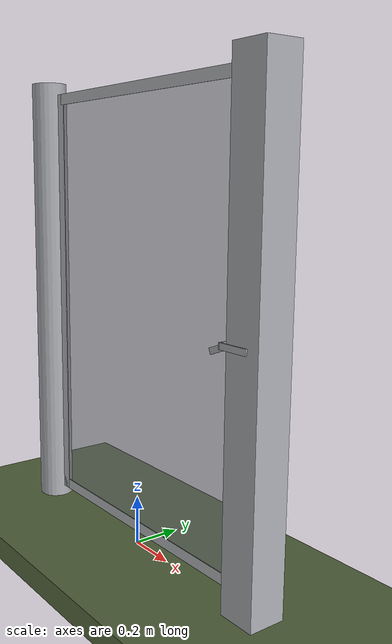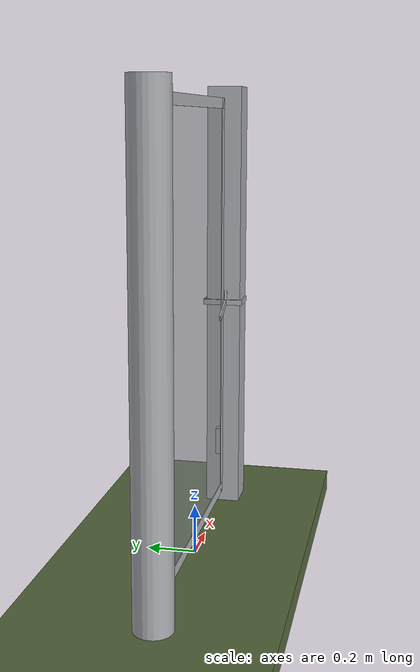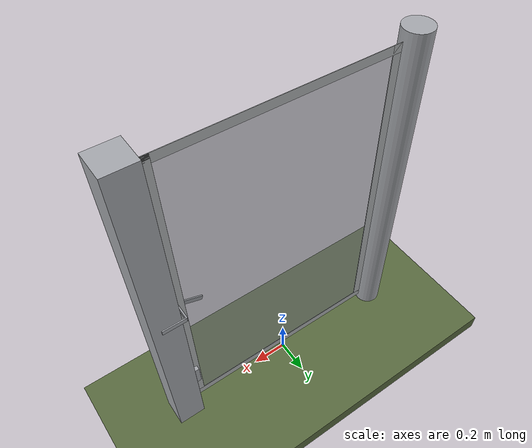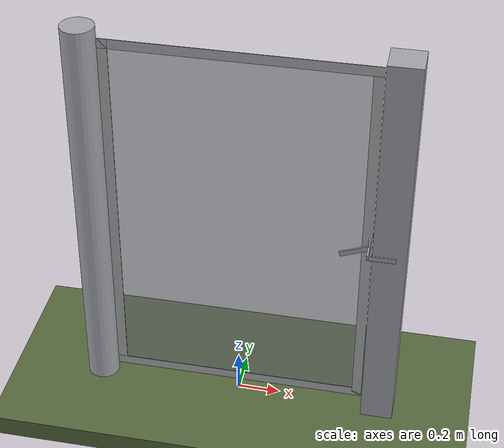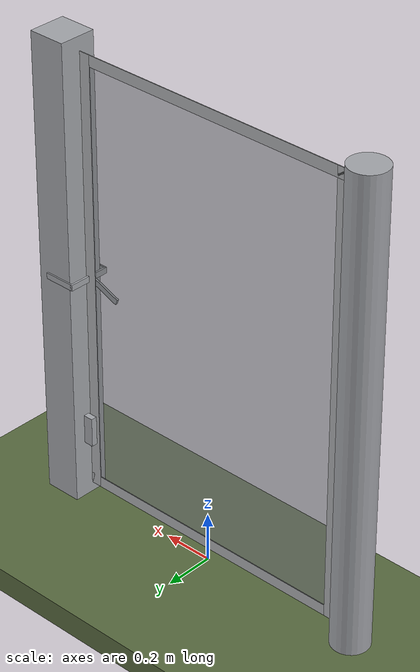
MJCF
<?xml version="1.0" ?>
<mujoco model="db0200_gate_swing_minimal">
  <compiler angle="radian" meshdir="../../hardware" texturedir="../../textures" autolimits="true" inertiafromgeom="false"/>
  <option timestep="0.002" integrator="implicitfast" cone="elliptic" impratio="10" noslip_iterations="3">
    <flag multiccd="enable"/>
  </option>
  <size memory="16M"/>
  <default>
    <geom condim="4" solref="0.005 1" solimp="0.95 0.99 0.001"/>
    <joint solreflimit="0.005 1" solimplimit="0.95 0.99 0.001"/>
    <tendon solreflimit="0.005 1"/>
    <equality solref="0.002 1"/>
  </default>
  <visual>
    <headlight ambient="0.4 0.4 0.4" diffuse="0.7 0.7 0.7" specular="0.2 0.2 0.2"/>
    <quality shadowsize="4096"/>
    <map znear="0.01" zfar="60"/>
  </visual>
  <asset>
    <material name="mat_floor" rgba="0.35 0.42 0.25 1" specular="0.2" shininess="0.15" reflectance="0"/>
    <material name="mat_wall" rgba="0.78 0.76 0.7 1" specular="0.2" shininess="0.1" reflectance="0"/>
    <material name="mat_leaf" rgba="0.7 0.71 0.72 1" specular="0.74" shininess="0.5" reflectance="0.36"/>
    <material name="mat_mesh_infill" rgba="0.6 0.62 0.64 0.55" specular="0.68" shininess="0.3" reflectance="0.1"/>
    <material name="mat_hinge" rgba="0.65 0.66 0.68 1" specular="0.74" shininess="0.5" reflectance="0.36"/>
    <material name="mat_op_steel_galvanized" rgba="0.65 0.66 0.68 1" specular="0.74" shininess="0.5" reflectance="0.36"/>
    <material name="mat_frame" rgba="0.65 0.66 0.68 1" specular="0.74" shininess="0.5" reflectance="0.36"/>
    <material name="mat_fence_mesh" rgba="0.6 0.62 0.64 0.5" specular="0.68" shininess="0.3" reflectance="0.1"/>
    <texture name="skybox" type="skybox" builtin="gradient" rgb1="0.6 0.7 0.85" rgb2="0.9 0.92 0.95" width="256" height="256"/>
  </asset>
  <worldbody>
    <light name="sun" pos="1.5 -2.5 4" dir="-0.3 0.5 -0.8" directional="true" diffuse="0.8 0.8 0.8" specular="0.3 0.3 0.3" castshadow="true"/>
    <light name="fill" pos="-1.5 2.5 3" dir="0.3 -0.5 -0.7" directional="true" diffuse="0.35 0.35 0.4" castshadow="false"/>
    <camera name="robot_view" pos="0 -2.33125 1.56275" xyaxes="1 0 0 0 0.26963 0.962964" fovy="52"/>
    <camera name="far_view" pos="0 2.33125 1.56275" xyaxes="-1 0 0 0 -0.26963 0.962964" fovy="52"/>
    <camera name="iso" pos="1.77175 -1.95825 1.93575" xyaxes="0.741536 0.670913 0 -0.242917 0.268487 0.932151" fovy="46"/>
    <camera name="detail_handle" pos="0.766 -0.8135 1.285" xyaxes="0.97561 0.219512 0 -0.070934 0.315262 0.94635" fovy="38"/>
    <geom name="floor" type="box" size="6 6 0.05" pos="0 0 -0.05" material="mat_floor" group="0" contype="1" conaffinity="1" friction="0.8 0.005 0.0001" density="2400"/>
    <geom name="post_hinge" type="cylinder" size="0.075 0.95" pos="-0.681 0 0.95" material="mat_frame" group="0" contype="1" conaffinity="1" friction="0.6 0.005 0.0001" density="800"/>
    <geom name="post_latch" type="box" size="0.075 0.075 0.95" pos="0.681 0 0.95" material="mat_frame" group="0" contype="1" conaffinity="1" friction="0.6 0.005 0.0001" density="800"/>
    <geom name="gate_stop" type="box" size="0.02 0.012 0.06" pos="0.586 0.0135 0.3" material="mat_frame" group="0" contype="1" conaffinity="1" friction="0.6 0.005 0.0001" density="800"/>
    <site name="approach_point" pos="0 -1.5 0" quat="1 0 0 0" size="0.05" rgba="0.2 0.9 0.2 0.5" group="4"/>
    <site name="goal_point" pos="0 1.5 0" quat="1 0 0 0" size="0.05" rgba="0.2 0.9 0.2 0.5" group="4"/>
    <site name="door_plane_center" pos="0 0 0.91" quat="1 0 0 0" size="0.02" rgba="0.2 0.9 0.2 0.5" group="4"/>
    <body name="leaf" pos="-0.606 0 0">
      <inertial pos="0.603 0 0.95" mass="6.369037" quat="-0.5 -0.5 -0.5 0.5" diaginertia="0.764295711 1.719659967 2.483946124"/>
      <joint name="leaf_hinge" type="hinge" axis="0 0 -1" pos="0.003 -0.05 0" limited="true" range="0 1.745329" damping="0.724086" frictionloss="2.801844" armature="0.02"/>
      <geom name="leaf_slab_col" type="box" size="0.6 0.0015 0.9" pos="0.603 0 0.95" material="mat_leaf" group="3" contype="1" conaffinity="1" rgba="0.8 0.3 0.3 0.25" friction="0.45 0.005 0.0001" density="1"/>
      <geom name="leaf_rail_b" type="box" size="0.6 0.0015 0.0225" pos="0.603 0 0.0725" material="mat_leaf" group="1" contype="0" conaffinity="0" density="1"/>
      <geom name="leaf_rail_t" type="box" size="0.6 0.0015 0.0225" pos="0.603 0 1.8275" material="mat_leaf" group="1" contype="0" conaffinity="0" density="1"/>
      <geom name="leaf_stile_h" type="box" size="0.0225 0.0015 0.9" pos="0.0255 0 0.95" material="mat_leaf" group="1" contype="0" conaffinity="0" density="1"/>
      <geom name="leaf_stile_l" type="box" size="0.0225 0.0015 0.9" pos="1.1805 0 0.95" material="mat_leaf" group="1" contype="0" conaffinity="0" density="1"/>
      <geom name="leaf_mesh" type="box" size="0.555 0.0015 0.855" pos="0.603 0 0.95" material="mat_mesh_infill" group="1" contype="0" conaffinity="0" density="1"/>
      <site name="leaf_edge_mid" pos="1.203 0 0.9" quat="1 0 0 0" size="0.02" rgba="0.2 0.9 0.2 0.5" group="4"/>
      <body name="leaf_fork" pos="1.063 0 0.9">
        <inertial pos="0.134316 -0.004218 0.0449" mass="0.252369" quat="-0.376277 -0.086339 0.035279 0.921801" diaginertia="0.00083812 0.000967344 0.001715405"/>
        <joint name="leaf_fork_hinge" type="hinge" axis="0 -1 0" limited="true" range="0 1.2" damping="0.049205" frictionloss="0.008804" armature="0.0001"/>
        <geom name="leaf_fork_arm" type="box" size="0.069176 0.004 0.012" pos="0.0645 -0.0135 0.025" quat="0.982958 0 -0.183833 0" material="mat_op_steel_galvanized" group="0" contype="1" conaffinity="1" friction="0.6 0.005 0.0001" density="2500"/>
        <geom name="leaf_fork_tine_n" type="box" size="0.0625 0.003 0.012" pos="0.1915 -0.084 0.05" material="mat_op_steel_galvanized" group="0" contype="1" conaffinity="1" friction="0.6 0.005 0.0001" density="2500"/>
        <geom name="leaf_fork_tine_p" type="box" size="0.0625 0.003 0.012" pos="0.1915 0.084 0.05" material="mat_op_steel_galvanized" group="0" contype="1" conaffinity="1" friction="0.6 0.005 0.0001" density="2500"/>
        <geom name="leaf_fork_bridge" type="box" size="0.004 0.087 0.012" pos="0.129 0 0.05" material="mat_op_steel_galvanized" group="0" contype="1" conaffinity="1" friction="0.6 0.005 0.0001" density="2500"/>
        <geom name="leaf_fork_handle" type="capsule" size="0.006 0.018" pos="0.129 -0.0135 0.08" material="mat_op_steel_galvanized" group="0" contype="1" conaffinity="1" friction="0.7 0.01 0.0001" density="2500"/>
        <site name="leaf_fork_grip" pos="0.129 -0.0135 0.105" quat="1 0 0 0" size="0.012" rgba="0.2 0.9 0.2 0.5" group="4"/>
      </body>
    </body>
  </worldbody>
  <sensor>
    <jointpos name="leaf_hinge_pos" joint="leaf_hinge"/>
    <jointvel name="leaf_hinge_vel" joint="leaf_hinge"/>
    <jointpos name="leaf_fork_hinge_pos" joint="leaf_fork_hinge"/>
    <jointvel name="leaf_fork_hinge_vel" joint="leaf_fork_hinge"/>
  </sensor>
</mujoco>
